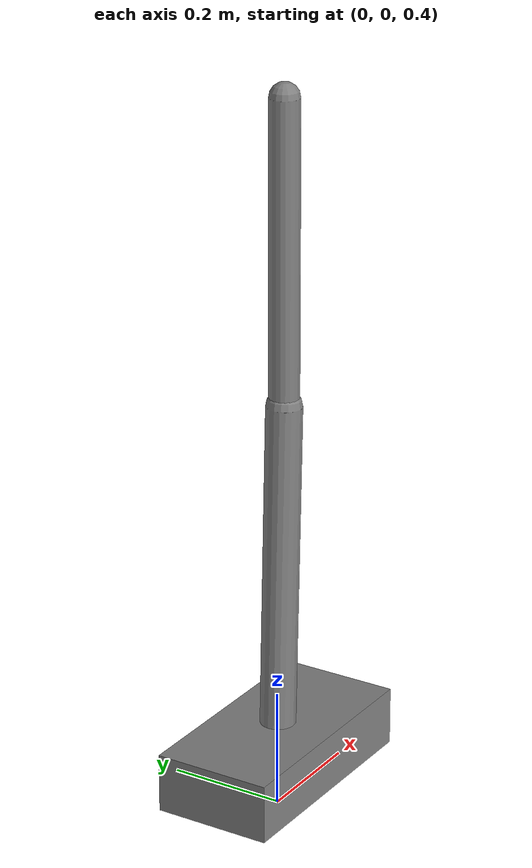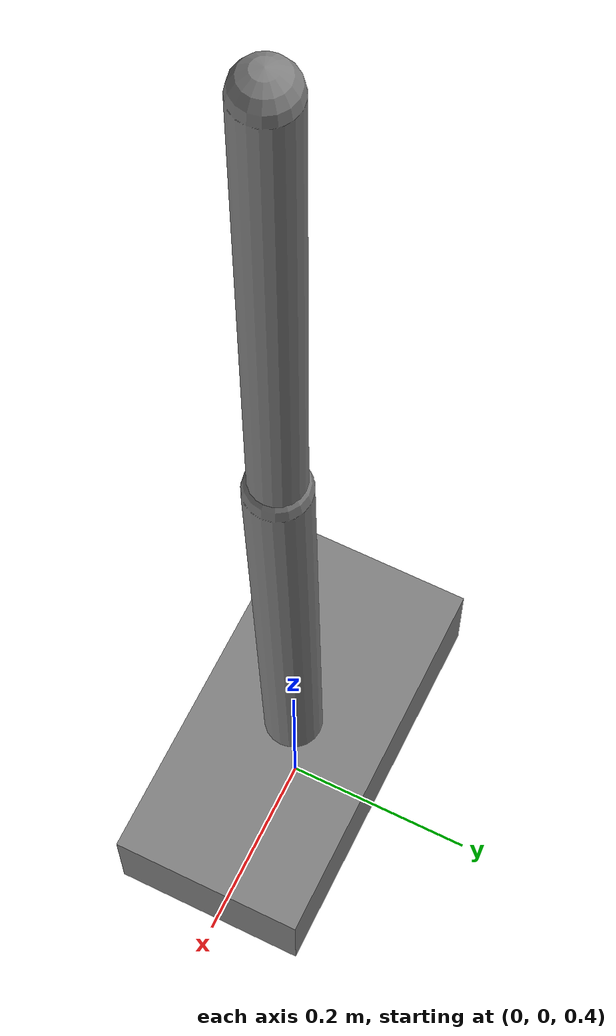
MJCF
<mujoco model="cartpole">
  <option timestep="0.005"/>
  <default>
    <geom contype="0" conaffinity="0"/>
    <joint damping="0.02"/>
  </default>
  <worldbody>
    <body name="cart" pos="0 0 0.5">
      <joint name="slider" type="slide" axis="1 0 0"/>
      <geom type="box" size="0.2 0.1 0.05" density="500"/>
      <body name="pole" pos="0 0 0">
        <joint name="hinge" type="hinge" axis="0 1 0" armature="0.01"/>
        <geom type="capsule" fromto="0 0 0 0.02 0 0.6" size="0.03"/>
        <body name="pole2" pos="0.02 0 0.6">
          <joint name="hinge2" type="hinge" axis="0 1 0" ref="10"/>
          <geom type="capsule" fromto="0 0 0 0 0 0.5" size="0.025"/>
        </body>
      </body>
    </body>
  </worldbody>
  <actuator>
    <motor joint="slider" gear="10" ctrlrange="-1 1"/>
    <position joint="hinge2" kp="5" kv="0.2"/>
  </actuator>
</mujoco>
